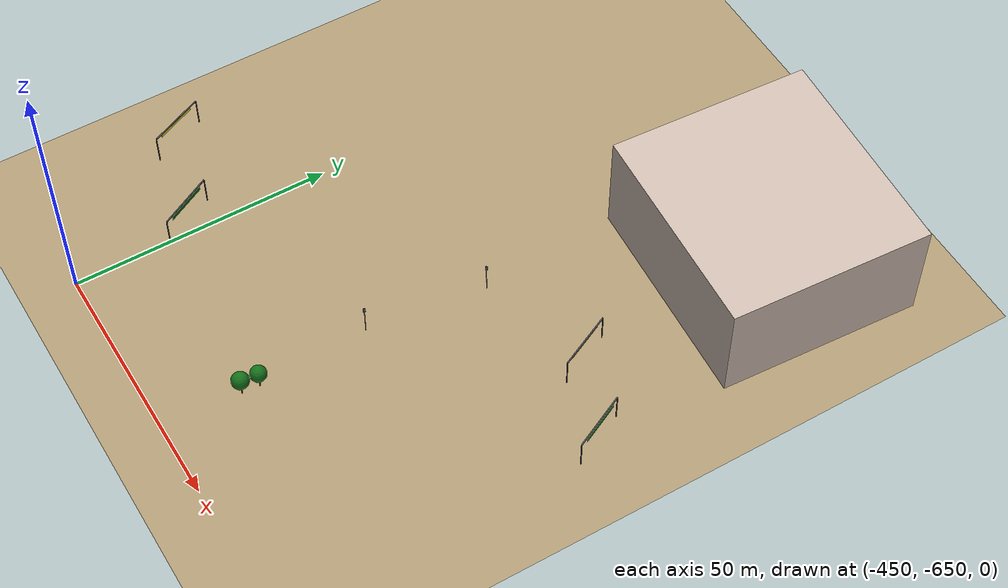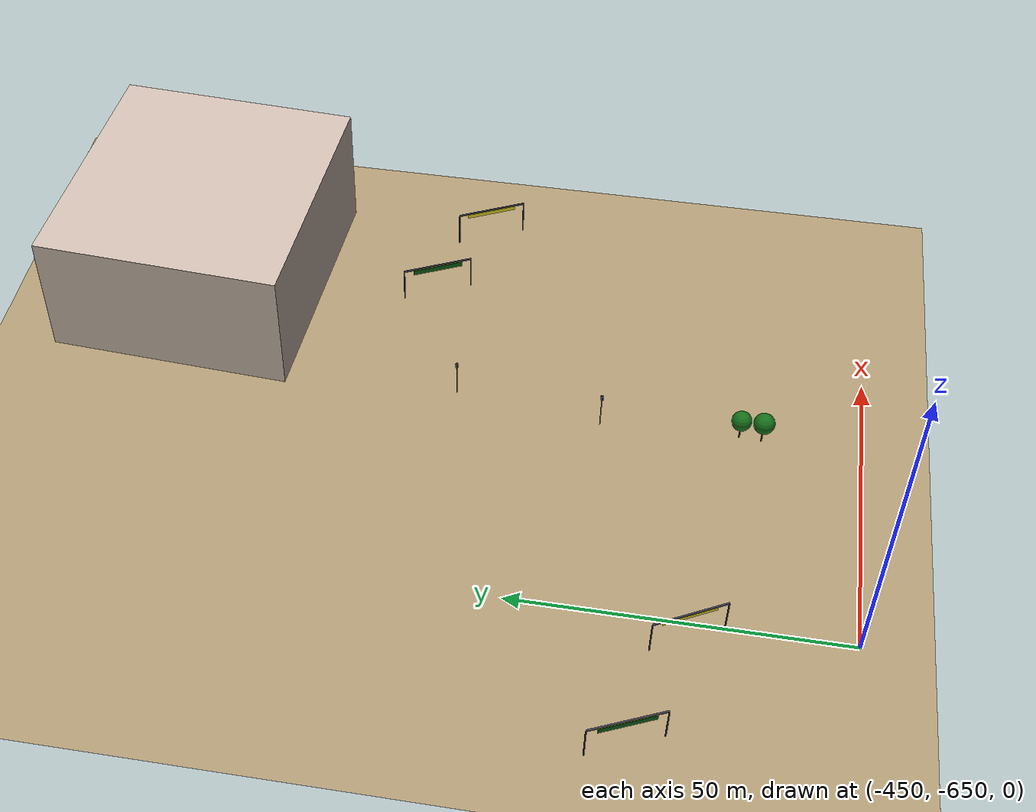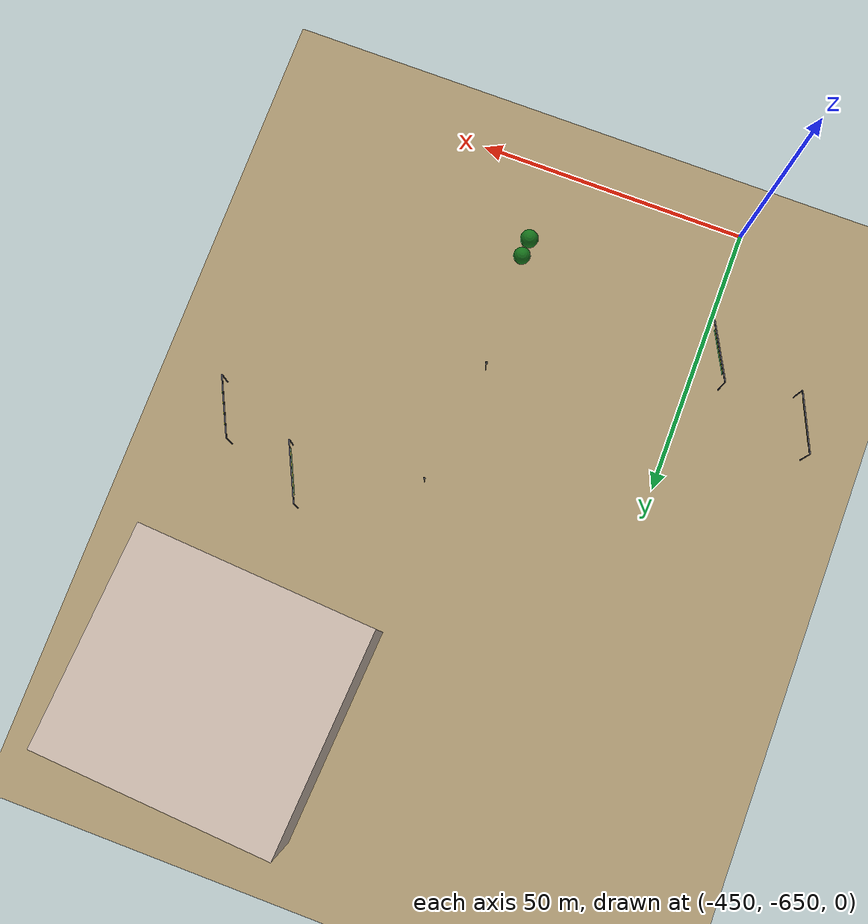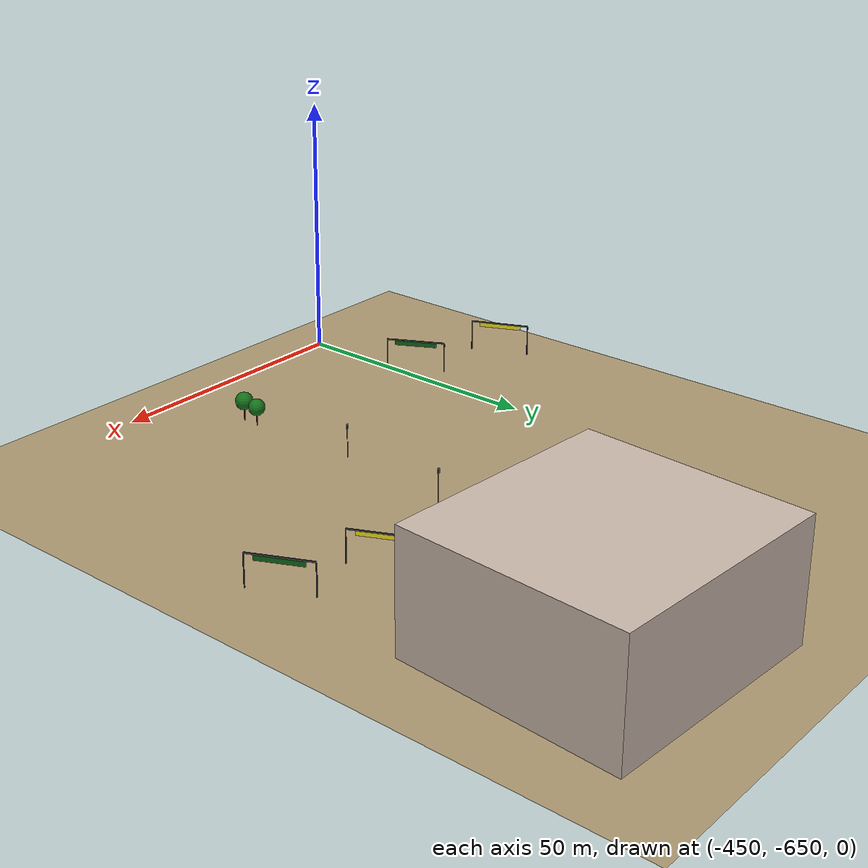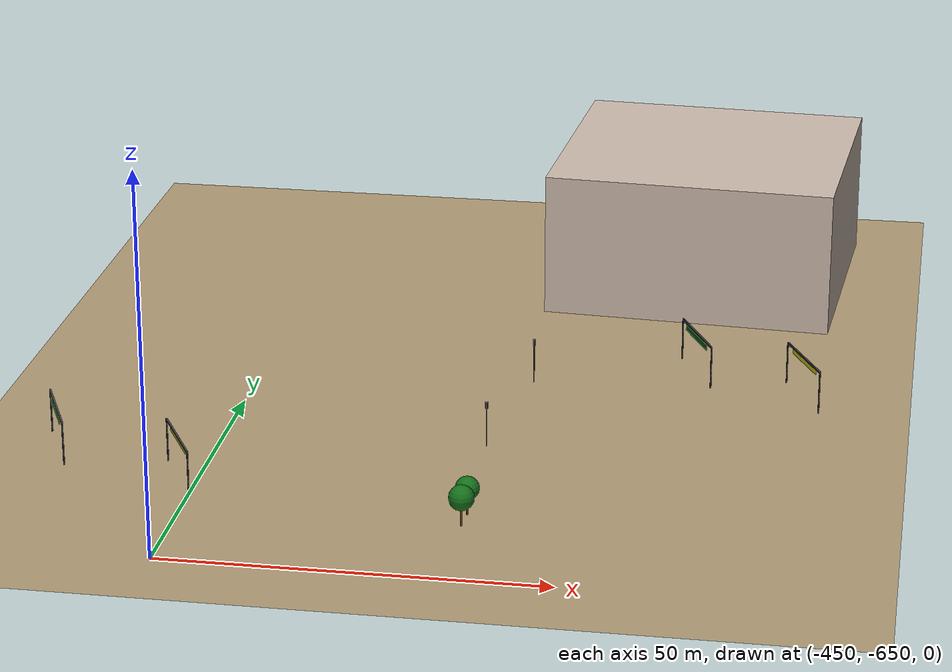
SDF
<sdf version="1.9">
 <world name="crossroad_world">
  <model name="ground_plane">
   <static>true</static>
   <pose>0 0 -0.05 0 0 0</pose>
   <link name="link">
    <collision name="collision">
     <geometry><plane><normal>0 0 1</normal><size>10000 10000</size></plane></geometry>
    </collision>
    <visual name="visual">
     <geometry><plane><normal>0 0 1</normal><size>15000 15000</size></plane></geometry>
     <material><ambient>0.68 0.60 0.45 1</ambient><diffuse>0.68 0.60 0.45 1</diffuse></material>
    </visual>
   </link>
  </model>
  <model name="tl_6">
   <static>true</static>
   <pose>-411.695 -587.010 0 0 0 0.448</pose>
   <link name="link">
    <visual name="pole">
     <pose>0 0 2.750 0 0 0</pose>
     <geometry><cylinder><radius>0.06</radius><length>5.50</length></cylinder></geometry>
     <material><ambient>0.25 0.25 0.25 1</ambient><diffuse>0.25 0.25 0.25 1</diffuse></material>
    </visual>
    <visual name="housing">
     <pose>0 0 5.950 0 0 0</pose>
     <geometry><box><size>0.33 0.33 0.9</size></box></geometry>
     <material><ambient>0.08 0.08 0.08 1</ambient><diffuse>0.08 0.08 0.08 1</diffuse></material>
    </visual>
    <visual name="red">
     <pose>0 0 6.250 0 0 0</pose>
     <geometry><sphere><radius>0.09</radius></sphere></geometry>
     <material>
      <ambient>0.90 0.05 0.05 1</ambient>
      <diffuse>0.90 0.05 0.05 1</diffuse>
      <emissive>0.6 0 0 1</emissive>
     </material>
    </visual>
    <visual name="amber">
     <pose>0 0 5.950 0 0 0</pose>
     <geometry><sphere><radius>0.09</radius></sphere></geometry>
     <material><ambient>0.90 0.55 0.00 1</ambient><diffuse>0.90 0.55 0.00 1</diffuse></material>
    </visual>
    <visual name="green">
     <pose>0 0 5.650 0 0 0</pose>
     <geometry><sphere><radius>0.09</radius></sphere></geometry>
     <material><ambient>0.00 0.78 0.00 1</ambient><diffuse>0.00 0.78 0.00 1</diffuse></material>
    </visual>
    <collision name="col">
     <pose>0 0 2.750 0 0 0</pose>
     <geometry><cylinder><radius>0.06</radius><length>5.50</length></cylinder></geometry>
    </collision>
   </link>
  </model>
  <model name="tl_7">
   <static>true</static>
   <pose>-414.715 -610.000 0 0 0 3.631</pose>
   <link name="link">
    <visual name="pole">
     <pose>0 0 2.750 0 0 0</pose>
     <geometry><cylinder><radius>0.06</radius><length>5.50</length></cylinder></geometry>
     <material><ambient>0.25 0.25 0.25 1</ambient><diffuse>0.25 0.25 0.25 1</diffuse></material>
    </visual>
    <visual name="housing">
     <pose>0 0 5.950 0 0 0</pose>
     <geometry><box><size>0.33 0.33 0.9</size></box></geometry>
     <material><ambient>0.08 0.08 0.08 1</ambient><diffuse>0.08 0.08 0.08 1</diffuse></material>
    </visual>
    <visual name="red">
     <pose>0 0 6.250 0 0 0</pose>
     <geometry><sphere><radius>0.09</radius></sphere></geometry>
     <material>
      <ambient>0.90 0.05 0.05 1</ambient>
      <diffuse>0.90 0.05 0.05 1</diffuse>
      <emissive>0.6 0 0 1</emissive>
     </material>
    </visual>
    <visual name="amber">
     <pose>0 0 5.950 0 0 0</pose>
     <geometry><sphere><radius>0.09</radius></sphere></geometry>
     <material><ambient>0.90 0.55 0.00 1</ambient><diffuse>0.90 0.55 0.00 1</diffuse></material>
    </visual>
    <visual name="green">
     <pose>0 0 5.650 0 0 0</pose>
     <geometry><sphere><radius>0.09</radius></sphere></geometry>
     <material><ambient>0.00 0.78 0.00 1</ambient><diffuse>0.00 0.78 0.00 1</diffuse></material>
    </visual>
    <collision name="col">
     <pose>0 0 2.750 0 0 0</pose>
     <geometry><cylinder><radius>0.06</radius><length>5.50</length></cylinder></geometry>
    </collision>
   </link>
  </model>
  <model name="gantry_50">
   <static>true</static>
   <pose>-470.718 -619.499 0 0 0 -1.144</pose>
   <link name="link">
    <visual name="post_l">
     <pose>-5.700 0 2.925 0 0 0</pose>
     <geometry><cylinder><radius>0.1</radius><length>5.85</length></cylinder></geometry>
     <material><ambient>0.30 0.30 0.35 1</ambient><diffuse>0.30 0.30 0.35 1</diffuse></material>
    </visual>
    <visual name="post_r">
     <pose>5.700 0 2.925 0 0 0</pose>
     <geometry><cylinder><radius>0.1</radius><length>5.85</length></cylinder></geometry>
     <material><ambient>0.30 0.30 0.35 1</ambient><diffuse>0.30 0.30 0.35 1</diffuse></material>
    </visual>
    <visual name="beam">
     <pose>0 0 6.000 0 0 0</pose>
     <geometry><box><size>11.400 0.22 0.22</size></box></geometry>
     <material><ambient>0.30 0.30 0.35 1</ambient><diffuse>0.30 0.30 0.35 1</diffuse></material>
    </visual>
    <visual name="sign_border">
     <pose>0 -0.14 5.450 0 0 0</pose>
     <geometry><box><size>8.288 0.04 0.92</size></box></geometry>
     <material><ambient>0.90 0.85 0.10 1</ambient><diffuse>0.90 0.85 0.10 1</diffuse></material>
    </visual>
    <visual name="sign_panel">
     <pose>0 -0.15 5.450 0 0 0</pose>
     <geometry><box><size>8.208 0.05 0.86</size></box></geometry>
     <material><ambient>0.05 0.38 0.10 1</ambient><diffuse>0.05 0.38 0.10 1</diffuse></material>
    </visual>
    <collision name="col_post_l">
     <pose>-5.700 0 2.925 0 0 0</pose>
     <geometry><cylinder><radius>0.1</radius><length>5.85</length></cylinder></geometry>
    </collision>
    <collision name="col_post_r">
     <pose>5.700 0 2.925 0 0 0</pose>
     <geometry><cylinder><radius>0.1</radius><length>5.85</length></cylinder></geometry>
    </collision>
    <collision name="col_beam">
     <pose>0 0 6.000 0 0 0</pose>
     <geometry><box><size>11.400 0.22 0.22</size></box></geometry>
    </collision>
   </link>
  </model>
  <model name="gantry_55">
   <static>true</static>
   <pose>-389.648 -580.073 0 0 0 -1.123</pose>
   <link name="link">
    <visual name="post_l">
     <pose>-5.700 0 2.925 0 0 0</pose>
     <geometry><cylinder><radius>0.1</radius><length>5.85</length></cylinder></geometry>
     <material><ambient>0.30 0.30 0.35 1</ambient><diffuse>0.30 0.30 0.35 1</diffuse></material>
    </visual>
    <visual name="post_r">
     <pose>5.700 0 2.925 0 0 0</pose>
     <geometry><cylinder><radius>0.1</radius><length>5.85</length></cylinder></geometry>
     <material><ambient>0.30 0.30 0.35 1</ambient><diffuse>0.30 0.30 0.35 1</diffuse></material>
    </visual>
    <visual name="beam">
     <pose>0 0 6.000 0 0 0</pose>
     <geometry><box><size>11.400 0.22 0.22</size></box></geometry>
     <material><ambient>0.30 0.30 0.35 1</ambient><diffuse>0.30 0.30 0.35 1</diffuse></material>
    </visual>
    <visual name="sign_border">
     <pose>0 -0.14 5.450 0 0 0</pose>
     <geometry><box><size>8.288 0.04 0.92</size></box></geometry>
     <material><ambient>0.90 0.85 0.10 1</ambient><diffuse>0.90 0.85 0.10 1</diffuse></material>
    </visual>
    <visual name="sign_panel">
     <pose>0 -0.15 5.450 0 0 0</pose>
     <geometry><box><size>8.208 0.05 0.86</size></box></geometry>
     <material><ambient>0.05 0.38 0.10 1</ambient><diffuse>0.05 0.38 0.10 1</diffuse></material>
    </visual>
    <collision name="col_post_l">
     <pose>-5.700 0 2.925 0 0 0</pose>
     <geometry><cylinder><radius>0.1</radius><length>5.85</length></cylinder></geometry>
    </collision>
    <collision name="col_post_r">
     <pose>5.700 0 2.925 0 0 0</pose>
     <geometry><cylinder><radius>0.1</radius><length>5.85</length></cylinder></geometry>
    </collision>
    <collision name="col_beam">
     <pose>0 0 6.000 0 0 0</pose>
     <geometry><box><size>11.400 0.22 0.22</size></box></geometry>
    </collision>
   </link>
  </model>
  <model name="gantry_57">
   <static>true</static>
   <pose>-452.553 -626.342 0 0 0 2.060</pose>
   <link name="link">
    <visual name="post_l">
     <pose>-5.700 0 2.925 0 0 0</pose>
     <geometry><cylinder><radius>0.1</radius><length>5.85</length></cylinder></geometry>
     <material><ambient>0.30 0.30 0.35 1</ambient><diffuse>0.30 0.30 0.35 1</diffuse></material>
    </visual>
    <visual name="post_r">
     <pose>5.700 0 2.925 0 0 0</pose>
     <geometry><cylinder><radius>0.1</radius><length>5.85</length></cylinder></geometry>
     <material><ambient>0.30 0.30 0.35 1</ambient><diffuse>0.30 0.30 0.35 1</diffuse></material>
    </visual>
    <visual name="beam">
     <pose>0 0 6.000 0 0 0</pose>
     <geometry><box><size>11.400 0.22 0.22</size></box></geometry>
     <material><ambient>0.30 0.30 0.35 1</ambient><diffuse>0.30 0.30 0.35 1</diffuse></material>
    </visual>
    <visual name="sign_border">
     <pose>0 -0.14 5.450 0 0 0</pose>
     <geometry><box><size>8.288 0.04 0.92</size></box></geometry>
     <material><ambient>0.90 0.85 0.10 1</ambient><diffuse>0.90 0.85 0.10 1</diffuse></material>
    </visual>
    <visual name="sign_panel">
     <pose>0 -0.15 5.450 0 0 0</pose>
     <geometry><box><size>8.208 0.05 0.86</size></box></geometry>
     <material><ambient>0.05 0.38 0.10 1</ambient><diffuse>0.05 0.38 0.10 1</diffuse></material>
    </visual>
    <collision name="col_post_l">
     <pose>-5.700 0 2.925 0 0 0</pose>
     <geometry><cylinder><radius>0.1</radius><length>5.85</length></cylinder></geometry>
    </collision>
    <collision name="col_post_r">
     <pose>5.700 0 2.925 0 0 0</pose>
     <geometry><cylinder><radius>0.1</radius><length>5.85</length></cylinder></geometry>
    </collision>
    <collision name="col_beam">
     <pose>0 0 6.000 0 0 0</pose>
     <geometry><box><size>11.400 0.22 0.22</size></box></geometry>
    </collision>
   </link>
  </model>
  <model name="gantry_58">
   <static>true</static>
   <pose>-374.385 -586.704 0 0 0 2.024</pose>
   <link name="link">
    <visual name="post_l">
     <pose>-5.700 0 2.925 0 0 0</pose>
     <geometry><cylinder><radius>0.1</radius><length>5.85</length></cylinder></geometry>
     <material><ambient>0.30 0.30 0.35 1</ambient><diffuse>0.30 0.30 0.35 1</diffuse></material>
    </visual>
    <visual name="post_r">
     <pose>5.700 0 2.925 0 0 0</pose>
     <geometry><cylinder><radius>0.1</radius><length>5.85</length></cylinder></geometry>
     <material><ambient>0.30 0.30 0.35 1</ambient><diffuse>0.30 0.30 0.35 1</diffuse></material>
    </visual>
    <visual name="beam">
     <pose>0 0 6.000 0 0 0</pose>
     <geometry><box><size>11.400 0.22 0.22</size></box></geometry>
     <material><ambient>0.30 0.30 0.35 1</ambient><diffuse>0.30 0.30 0.35 1</diffuse></material>
    </visual>
    <visual name="sign_border">
     <pose>0 -0.14 5.450 0 0 0</pose>
     <geometry><box><size>8.288 0.04 0.92</size></box></geometry>
     <material><ambient>0.90 0.85 0.10 1</ambient><diffuse>0.90 0.85 0.10 1</diffuse></material>
    </visual>
    <visual name="sign_panel">
     <pose>0 -0.15 5.450 0 0 0</pose>
     <geometry><box><size>8.208 0.05 0.86</size></box></geometry>
     <material><ambient>0.05 0.38 0.10 1</ambient><diffuse>0.05 0.38 0.10 1</diffuse></material>
    </visual>
    <collision name="col_post_l">
     <pose>-5.700 0 2.925 0 0 0</pose>
     <geometry><cylinder><radius>0.1</radius><length>5.85</length></cylinder></geometry>
    </collision>
    <collision name="col_post_r">
     <pose>5.700 0 2.925 0 0 0</pose>
     <geometry><cylinder><radius>0.1</radius><length>5.85</length></cylinder></geometry>
    </collision>
    <collision name="col_beam">
     <pose>0 0 6.000 0 0 0</pose>
     <geometry><box><size>11.400 0.22 0.22</size></box></geometry>
    </collision>
   </link>
  </model>
  <model name="tree_125">
   <static>true</static>
   <pose>-413.934 -634.814 0 0 0 0</pose>
   <link name="link">
    <visual name="trunk">
     <pose>0 0 1.399 0 0 0</pose>
     <geometry><cylinder><radius>0.122</radius><length>2.799</length></cylinder></geometry>
     <material><ambient>0.38 0.22 0.08 1</ambient><diffuse>0.38 0.22 0.08 1</diffuse></material>
    </visual>
    <visual name="canopy">
     <pose>0 0 3.879 0 0 0</pose>
     <geometry><sphere><radius>1.662</radius></sphere></geometry>
     <material><ambient>0.08 0.44 0.10 1</ambient><diffuse>0.08 0.44 0.10 1</diffuse></material>
    </visual>
    <collision name="col">
     <pose>0 0 1.399 0 0 0</pose>
     <geometry><cylinder><radius>0.122</radius><length>2.799</length></cylinder></geometry>
    </collision>
   </link>
  </model>
  <model name="tree_126">
   <static>true</static>
   <pose>-413.756 -631.418 0 0 0 0</pose>
   <link name="link">
    <visual name="trunk">
     <pose>0 0 1.321 0 0 0</pose>
     <geometry><cylinder><radius>0.116</radius><length>2.642</length></cylinder></geometry>
     <material><ambient>0.38 0.22 0.08 1</ambient><diffuse>0.38 0.22 0.08 1</diffuse></material>
    </visual>
    <visual name="canopy">
     <pose>0 0 3.662 0 0 0</pose>
     <geometry><sphere><radius>1.569</radius></sphere></geometry>
     <material><ambient>0.08 0.44 0.10 1</ambient><diffuse>0.08 0.44 0.10 1</diffuse></material>
    </visual>
    <collision name="col">
     <pose>0 0 1.321 0 0 0</pose>
     <geometry><cylinder><radius>0.116</radius><length>2.642</length></cylinder></geometry>
    </collision>
   </link>
  </model>
  <model name="building_461">
   <static>true</static>
   <pose>-391.936 -541.569 10.469 0 0 -0.062</pose>
   <link name="link">
    <visual name="body">
     <geometry><box><size>41.97 39.03 20.94</size></box></geometry>
     <material><ambient>0.80 0.73 0.68 1</ambient><diffuse>0.80 0.73 0.68 1</diffuse></material>
    </visual>
    <collision name="col"><geometry><box><size>41.97 39.03 20.94</size></box></geometry></collision>
   </link>
  </model>
 </world>
</sdf>
